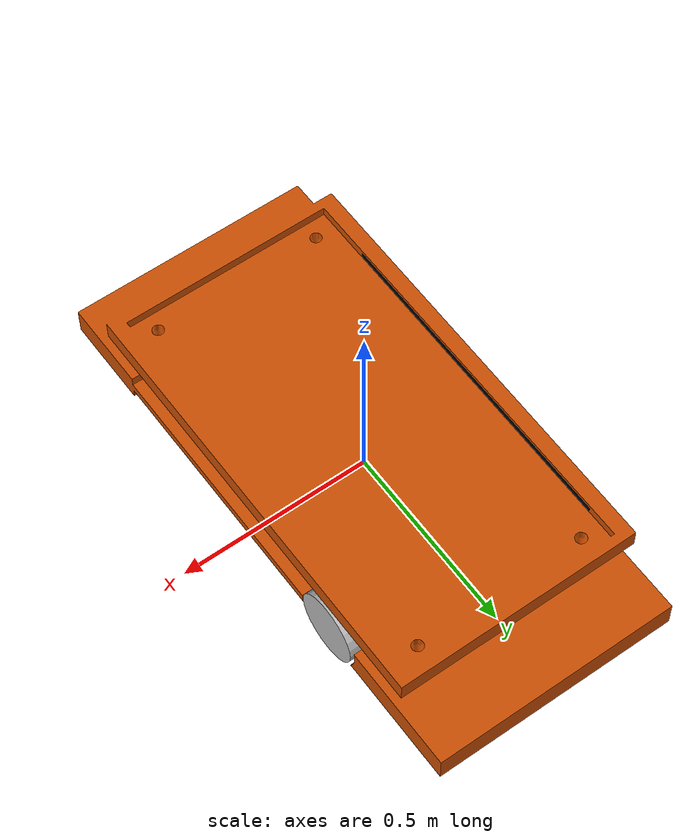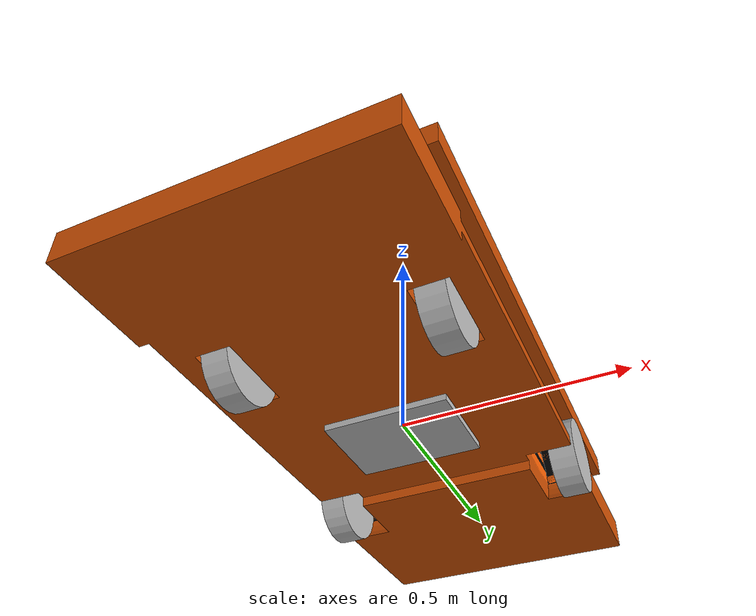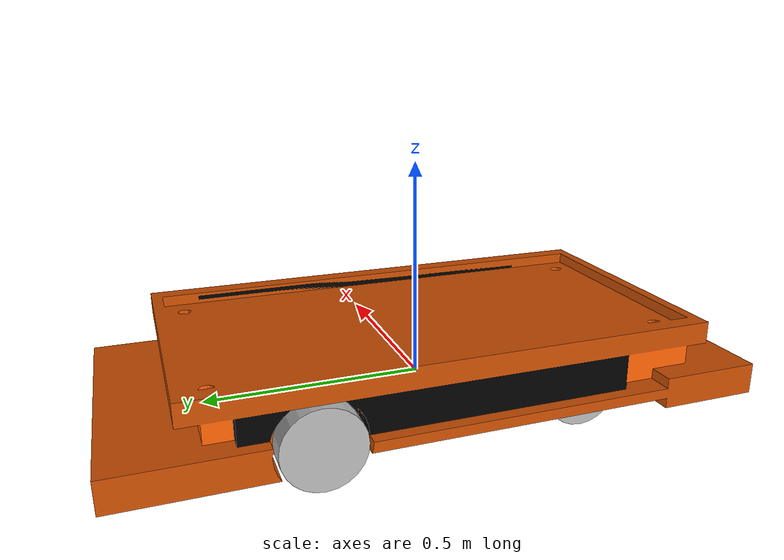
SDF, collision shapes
<?xml version="1.0"?>
<sdf version="1.5">

  <model name="bmw_logistic_robot_ackermann">
    <pose>0 0 0.0 0 0 0</pose>

    <link name='base_link' />

    <joint name='chassis_link_joint' type='fixed'>
      <pose>0.0 0.0 0.0 0 0 0</pose>
      <parent>base_link</parent>
      <child>chassis_link</child>
    </joint>
    <link name='chassis_link'>
      <inertial>
        <pose>1e-06 0.07307 0.65096 0 -0 0</pose>
        <mass>1580</mass>
        <inertia>
          <ixx>1997.86</ixx>
          <ixy>-3e-05</ixy>
          <ixz>-1e-06</ixz>
          <iyy>442.769</iyy>
          <iyz>62.5206</iyz>
          <izz>2238.05</izz>
        </inertia>
      </inertial>
      <collision name='chassis_link_fixed_joint_lump__chassis_link_collision'>
        <pose>0 0 0.0 0 -0 0</pose>
        <geometry>
          <mesh>
            <scale>0.5 0.5 0.5</scale>
            <uri>model://bmw_logistic_robot_ackermann/meshes/chassis.dae</uri>
          </mesh>
        </geometry>
        <surface>
          <contact>
            <ode />
          </contact>
          <friction>
            <ode>
              <mu>0.2</mu>
              <mu2>0.2</mu2>
            </ode>
          </friction>
        </surface>
      </collision>
      <visual name='chassis_link_fixed_joint_lump__chassis_link_visual'>
        <pose>0 0 0.0 0 -0 0</pose>
        <geometry>
          <mesh>
            <scale>0.5 0.5 0.5</scale>
            <uri>model://bmw_logistic_robot_ackermann/meshes/chassis.dae</uri>
          </mesh>
        </geometry>
      </visual>
      <self_collide>1</self_collide>
    </link>

    <joint name='bl_axle' type='revolute'>
      <pose relative_to='chassis_link'>-0.225 -0.305 0.015 0 -0 0</pose>
      <parent>chassis_link</parent>
      <child>bl_1</child>
      <axis>
        <xyz>-1 0 0</xyz>
        <dynamics>
          <friction>12.031606150200002</friction>
        </dynamics>
      </axis>
    </joint>
    <link name='bl_1'>
      <pose relative_to='bl_axle'>0 0 0 0 -0 0</pose>
      <inertial>
        <pose>-0.0 0 -0 0 -0 0</pose>
        <mass>4.5</mass>
        <inertia>
          <ixx>1.84514</ixx>
          <ixy>0</ixy>
          <ixz>0</ixz>
          <iyy>1.04961</iyy>
          <iyz>0</iyz>
          <izz>1.04961</izz>
        </inertia>
      </inertial>
      <collision name='bl_1_collision'>
        <pose relative_to='bl_axle'>0 0 0 0 1.5708 0</pose>
        <geometry>
          <cylinder>
            <radius>.09</radius>
            <length>.06</length>
          </cylinder>
        </geometry>
        <surface>
          <contact>
            <ode />
          </contact>
          <friction>
            <ode>
              <mu>1.7</mu>
              <mu2>1.7</mu2>
            </ode>
          </friction>
        </surface>
      </collision>
      <visual name='bl_1_visual'>
        <pose>0.0 0.0 0.0 0 -0 0</pose>
        <geometry>
          <mesh>
            <scale>0.5 0.5 0.5</scale>
            <uri>model://bmw_logistic_robot_ackermann/meshes/wheel.dae</uri>
          </mesh>
        </geometry>
      </visual>
      <self_collide>0</self_collide>
    </link>

    <joint name='br_axle' type='revolute'>
      <pose relative_to='chassis_link'>0.225 -0.305 0.015 0 -0 0</pose>
      <parent>chassis_link</parent>
      <child>br_1</child>
      <axis>
        <xyz>-1 0 0</xyz>
        <dynamics>
          <friction>12.031606150200002</friction>
        </dynamics>
      </axis>
    </joint>
    <link name='br_1'>
      <pose relative_to='br_axle'>0 0 0 0 -0 0</pose>
      <inertial>
        <pose>-0.0377 0 -0 0 -0 0</pose>
        <mass>24.5</mass>
        <inertia>
          <ixx>1.84514</ixx>
          <ixy>0</ixy>
          <ixz>0</ixz>
          <iyy>1.04961</iyy>
          <iyz>0</iyz>
          <izz>1.04961</izz>
        </inertia>
      </inertial>
      <collision name='br_1_collision'>
        <pose relative_to='br_axle'>0 0 0 0 1.5708 0</pose>
        <geometry>
          <cylinder>
            <radius>.09</radius>
            <length>.06</length>
          </cylinder>
        </geometry>
        <surface>
          <contact>
            <ode />
          </contact>
          <friction>
            <ode>
              <mu>1.7</mu>
              <mu2>1.7</mu2>
            </ode>
          </friction>
        </surface>
      </collision>
      <visual name='br_1_visual'>
        <pose>0.0 0.0 0.0 0 -0 0</pose>
        <geometry>
          <mesh>
            <scale>0.5 0.5 0.5</scale>
            <uri>model://bmw_logistic_robot_ackermann/meshes/wheel.dae</uri>
          </mesh>
        </geometry>
      </visual>
      <self_collide>0</self_collide>
    </link>

    <joint name='l_steer' type='revolute'>
      <pose relative_to='chassis_link'>-0.295 0.305 0.015 0 -0 0</pose>
      <parent>chassis_link</parent>
      <child>l_steer_1</child>
      <axis>
        <xyz>0 0 1</xyz>
        <limit>
          <lower>-0.95</lower>
          <upper>0.95</upper>
        </limit>
        <dynamics>
          <friction>18.0474092253</friction>
        </dynamics>
      </axis>
    </joint>
    <link name='l_steer_1'>
      <pose relative_to='l_steer'>0 0 0 0 -0 0</pose>
      <inertial>
        <pose>0.003381 0 0.02162 0 -0 0</pose>
        <mass>1</mass>
        <inertia>
          <ixx>1</ixx>
          <ixy>0</ixy>
          <ixz>0</ixz>
          <iyy>1</iyy>
          <iyz>0</iyz>
          <izz>1</izz>
        </inertia>
      </inertial>
      <self_collide>0</self_collide>
    </link>
    <joint name='fl_axle' type='revolute'>
      <pose relative_to='l_steer_1'>0 0 0 0 -0 0</pose>
      <parent>l_steer_1</parent>
      <child>fl_1</child>
      <axis>
        <xyz>-1 0 0</xyz>
        <dynamics>
          <friction>12.031606150200002</friction>
        </dynamics>
      </axis>
    </joint>
    <link name='fl_1'>
      <pose relative_to='fl_axle'>0 0 0 0 -0 0</pose>
      <inertial>
        <pose>-0.0377 0 -0 0 -0 0</pose>
        <mass>24.5</mass>
        <inertia>
          <ixx>1.84514</ixx>
          <ixy>0</ixy>
          <ixz>0</ixz>
          <iyy>1.04961</iyy>
          <iyz>0</iyz>
          <izz>1.04961</izz>
        </inertia>
      </inertial>
      <collision name='fl_1_collision'>
        <pose>0.0 -0.0 0.0 0 1.5708 0</pose>
        <geometry>
          <cylinder>
            <radius>.09</radius>
            <length>.06</length>
          </cylinder>
        </geometry>
        <surface>
          <contact>
            <ode />
          </contact>
          <friction>
            <ode>
              <mu>1.1</mu>
              <mu2>1.1</mu2>
            </ode>
          </friction>
        </surface>
      </collision>
      <visual name='fl_1_visual'>
        <pose>0.0 -0.0 0.0 0 -0 0</pose>
        <geometry>
          <mesh>
            <scale>0.5 0.5 0.5</scale>
            <uri>model://bmw_logistic_robot_ackermann/meshes/wheel.dae</uri>
          </mesh>
        </geometry>
      </visual>
      <self_collide>0</self_collide>
    </link>

    <joint name='r_steer' type='revolute'>
      <pose relative_to='chassis_link'>0.295 0.305 0.015 0 -0 0</pose>
      <parent>chassis_link</parent>
      <child>r_steer_1</child>
      <axis>
        <xyz>0 0 1</xyz>
        <limit>
          <lower>-0.95</lower>
          <upper>0.95</upper>
        </limit>
        <dynamics>
          <damping>0.01</damping>
          <friction>18.0474092253</friction>
        </dynamics>
      </axis>
    </joint>
    <link name='r_steer_1'>
      <pose relative_to='r_steer'>0 0 0 0 -0 0</pose>
      <inertial>
        <pose>0.003381 0 0.02162 0 -0 0</pose>
        <mass>1</mass>
        <inertia>
          <ixx>1</ixx>
          <ixy>0</ixy>
          <ixz>0</ixz>
          <iyy>1</iyy>
          <iyz>0</iyz>
          <izz>1</izz>
        </inertia>
      </inertial>
      <self_collide>0</self_collide>
    </link>
    <joint name='fr_axle' type='revolute'>
      <pose relative_to='r_steer_1'>0 0 0 0 -0 0</pose>
      <parent>r_steer_1</parent>
      <child>fr_1</child>
      <axis>
        <xyz>-1 0 0</xyz>
        <dynamics>
          <friction>12.031606150200002</friction>
        </dynamics>
      </axis>
    </joint>
    <link name='fr_1'>
      <pose relative_to='fr_axle'>0 0 0 0 -0 0</pose>
      <inertial>
        <pose>-0.0377 0 -0 0 -0 0</pose>
        <mass>24.5</mass>
        <inertia>
          <ixx>1.84514</ixx>
          <ixy>0</ixy>
          <ixz>0</ixz>
          <iyy>1.04961</iyy>
          <iyz>0</iyz>
          <izz>1.04961</izz>
        </inertia>
      </inertial>
      <collision name='fr_1_collision'>
        <pose>-0.0 -0.0 0.0 0 1.5708 0</pose>
        <geometry>
          <cylinder>
            <radius>.09</radius>
            <length>.06</length>
          </cylinder>
        </geometry>
        <surface>
          <contact>
            <ode />
          </contact>
          <friction>
            <ode>
              <mu>1.7</mu>
              <mu2>1.7</mu2>
            </ode>
          </friction>
        </surface>
      </collision>
      <visual name='fr_1_visual'>
        <pose>-0.0 -0.0 0.0 0 -0 0</pose>
        <geometry>
          <mesh>
            <scale>0.5 0.5 0.5</scale>
            <uri>model://bmw_logistic_robot_ackermann/meshes/wheel.dae</uri>
          </mesh>
        </geometry>
      </visual>
      <self_collide>0</self_collide>
    </link>

    <plugin name='ackermann_drive' filename='libgazebo_ros_ackermann_drive.so'>
      <ros>
        <remapping>cmd_vel:=cmd_vel</remapping>
        <remapping>odom:=odom</remapping>
        <remapping>distance:=distance</remapping>
      </ros>

      <update_rate>100.0</update_rate>

      <!-- wheels -->
      <front_left_joint>fl_axle</front_left_joint>
      <front_right_joint>fr_axle</front_right_joint>
      <rear_left_joint>bl_axle</rear_left_joint>
      <rear_right_joint>br_axle</rear_right_joint>
      <left_steering_joint>l_steer</left_steering_joint>
      <right_steering_joint>r_steer</right_steering_joint>

      <!-- Max absolute steer angle for tyre in radians-->
      <!-- Any cmd_vel angular z greater than this would be capped -->
      <max_steer>0.52</max_steer>

      <!-- Max absolute steering angle of steering wheel -->
      <!-- Max absolute steering angle of steering wheel -->
      <max_steering_angle>0.64</max_steering_angle>

      <!-- Max absolute linear speed in m/s -->
      <max_speed>50</max_speed>

      <!-- PID tuning -->
      <left_steering_pid_gain>1500 900 450</left_steering_pid_gain>
      <left_steering_i_range>0 0</left_steering_i_range>
      <right_steering_pid_gain>1500 900 450</right_steering_pid_gain>
      <right_steering_i_range>0 0</right_steering_i_range>
      <linear_velocity_pid_gain>1000 100 10</linear_velocity_pid_gain>
      <linear_velocity_i_range>0 0</linear_velocity_i_range>

      <!-- output -->
      <publish_odom>true</publish_odom>
      <publish_odom_tf>true</publish_odom_tf>
      <publish_wheel_tf>true</publish_wheel_tf>
      <publish_distance>true</publish_distance>

      <odometry_frame>odom</odometry_frame>
      <robot_base_frame>chassis_link</robot_base_frame>
    </plugin>

    <joint name="lift_joint" type="prismatic">
      <parent>base_link</parent>
      <child>lift_link</child>
      <axis>
          <xyz>0 0 1</xyz>
          <limit>
              <lower>0.18</lower>
              <upper>0.30</upper>
              <effort>20</effort>
              <velocity>0.5</velocity>
          </limit>
          <dynamics>
              <damping>0.1</damping>
              <friction>0</friction>
              <spring_reference>0</spring_reference>
              <spring_stiffness>0</spring_stiffness>
          </dynamics>
          <use_parent_model_frame>1</use_parent_model_frame>
      </axis>
      <physics>
          <provide_feedback>1</provide_feedback>
          <ode>
              <provide_feedback>1</provide_feedback>
              <implicit_spring_damper>1</implicit_spring_damper>
              <cfm_damping>1</cfm_damping>
              <limit>
                  <cfm>0</cfm>
                  <erp>0.2</erp>
              </limit>
          </ode>
      </physics>
    </joint>
    <link name="lift_link">
      <pose>-0.0 0.0 -0.03 0 0 0</pose>
      <visual name="lift_visual">
          <geometry>
              <mesh>
                  <uri>model://bmw_logistic_robot_ackermann/meshes/platform.dae</uri>
                  <scale>0.5 0.5 0.5</scale>
              </mesh>
          </geometry>
      </visual>
      <inertial>
          <inertia>
              <ixx>0.001</ixx>
              <ixy>0.000</ixy>
              <ixz>0.000</ixz>
              <iyy>0.001</iyy>
              <iyz>0.000</iyz>
              <izz>0.001</izz>
          </inertia>
          <mass>0.1</mass>
      </inertial>
      <collision name="lift_collision">
          <geometry>
              <box>
                  <size>0.2805 0.2 0.015</size>
              </box>
          </geometry>
          <surface>
              <friction>
                  <ode>
                      <mu>1000000</mu>
                      <mu2>100000</mu2>
                      <fdir1>0 0 0</fdir1>
                      <slip1>0.0</slip1>
                      <slip2>0.0</slip2>
                  </ode>
              </friction>
              <contact>
                  <ode>
                      <soft_cfm>0</soft_cfm>
                      <soft_erp>0.2</soft_erp>
                      <kp>1e+5</kp>
                      <kd>1</kd>
                      <max_vel>0.01</max_vel>
                      <min_depth>0.001</min_depth>
                  </ode>
              </contact>
          </surface>
      </collision>
    </link>

  </model>
</sdf>
